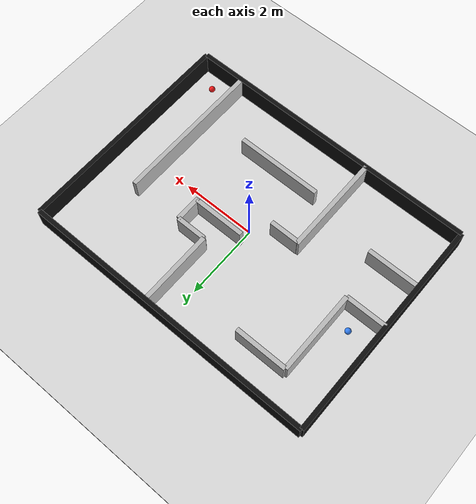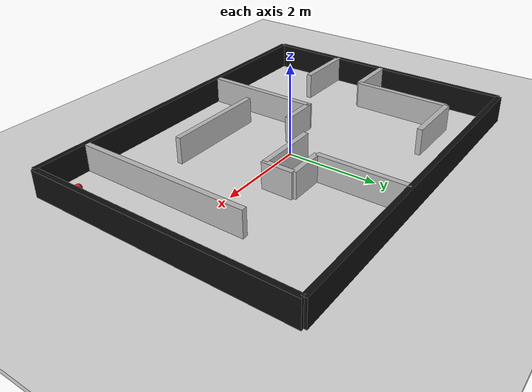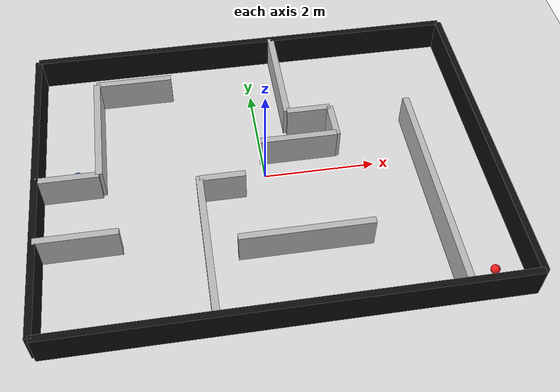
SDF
<?xml version="1.0" ?>
<sdf version="1.9">
  <world name="maze_world">
    <gravity>0 0 -9.8</gravity>

    <model name="ground_plane_local">
      <static>true</static>
      <pose>0 0 0 0 0 0</pose>
      <link name="link">
        <collision name="collision">
          <geometry><box><size>30 30 0.1</size></box></geometry>
          <pose>0 0 -0.05 0 0 0</pose>
        </collision>
        <visual name="visual">
          <geometry><box><size>30 30 0.1</size></box></geometry>
          <pose>0 0 -0.05 0 0 0</pose>
          <material>
            <ambient>0.85 0.85 0.85 1</ambient>
            <diffuse>0.85 0.85 0.85 1</diffuse>
          </material>
        </visual>
      </link>
    </model>

    <light type="directional" name="sun_light">
      <cast_shadows>false</cast_shadows>
      <pose>0 0 10 0 0 0</pose>
      <diffuse>0.95 0.95 0.95 1</diffuse>
      <specular>0.15 0.15 0.15 1</specular>
      <attenuation>
        <range>1000</range>
        <constant>0.9</constant>
        <linear>0.01</linear>
        <quadratic>0.001</quadratic>
      </attenuation>
      <direction>-0.5 0.1 -0.9</direction>
    </light>

    <scene>
      <ambient>0.8 0.8 0.8 1</ambient>
      <background>0.95 0.95 0.95 1</background>
      <shadows>false</shadows>
    </scene>

    <physics name="1ms" type="ignored">
      <max_step_size>0.001</max_step_size>
      <real_time_factor>1.0</real_time_factor>
    </physics>

    <!-- Outer walls -->
    <model name="wall_north">
      <static>true</static>
      <pose>0 3.0 0.3 0 0 0</pose>
      <link name="link">
        <collision name="collision">
          <geometry><box><size>8.0 0.12 0.6</size></box></geometry>
        </collision>
        <visual name="visual">
          <geometry><box><size>8.0 0.12 0.6</size></box></geometry>
          <material><ambient>0.05 0.05 0.05 1</ambient><diffuse>0.05 0.05 0.05 1</diffuse></material>
        </visual>
      </link>
    </model>

    <model name="wall_south">
      <static>true</static>
      <pose>0 -3.0 0.3 0 0 0</pose>
      <link name="link">
        <collision name="collision">
          <geometry><box><size>8.0 0.12 0.6</size></box></geometry>
        </collision>
        <visual name="visual">
          <geometry><box><size>8.0 0.12 0.6</size></box></geometry>
          <material><ambient>0.05 0.05 0.05 1</ambient><diffuse>0.05 0.05 0.05 1</diffuse></material>
        </visual>
      </link>
    </model>

    <model name="wall_west">
      <static>true</static>
      <pose>-4.0 0.0 0.3 0 0 0</pose>
      <link name="link">
        <collision name="collision">
          <geometry><box><size>0.12 6.0 0.6</size></box></geometry>
        </collision>
        <visual name="visual">
          <geometry><box><size>0.12 6.0 0.6</size></box></geometry>
          <material><ambient>0.05 0.05 0.05 1</ambient><diffuse>0.05 0.05 0.05 1</diffuse></material>
        </visual>
      </link>
    </model>

    <model name="wall_east">
      <static>true</static>
      <pose>4.0 0.0 0.3 0 0 0</pose>
      <link name="link">
        <collision name="collision">
          <geometry><box><size>0.12 6.0 0.6</size></box></geometry>
        </collision>
        <visual name="visual">
          <geometry><box><size>0.12 6.0 0.6</size></box></geometry>
          <material><ambient>0.05 0.05 0.05 1</ambient><diffuse>0.05 0.05 0.05 1</diffuse></material>
        </visual>
      </link>
    </model>

    <!-- Maze inner walls (re-drawn to match provided PNG) -->
    <model name="wall_i1_left_mid_h">
      <static>true</static>
      <pose>-3.45 0.0 0.3 0 0 0</pose>
      <link name="link">
        <collision name="collision"><geometry><box><size>1.1 0.12 0.6</size></box></geometry></collision>
        <visual name="visual"><geometry><box><size>1.1 0.12 0.6</size></box></geometry></visual>
      </link>
    </model>

    <model name="wall_i2_left_top_v">
      <static>true</static>
      <pose>-2.9 1.1 0.3 0 0 0</pose>
      <link name="link">
        <collision name="collision"><geometry><box><size>0.12 2.2 0.6</size></box></geometry></collision>
        <visual name="visual"><geometry><box><size>0.12 2.2 0.6</size></box></geometry></visual>
      </link>
    </model>

    <model name="wall_i3_left_top_h">
      <static>true</static>
      <pose>-2.2 2.2 0.3 0 0 0</pose>
      <link name="link">
        <collision name="collision"><geometry><box><size>1.4 0.12 0.6</size></box></geometry></collision>
        <visual name="visual"><geometry><box><size>1.4 0.12 0.6</size></box></geometry></visual>
      </link>
    </model>

    <model name="wall_i4_left_low_h">
      <static>true</static>
      <pose>-3.3 -1.25 0.3 0 0 0</pose>
      <link name="link">
        <collision name="collision"><geometry><box><size>1.4 0.12 0.6</size></box></geometry></collision>
        <visual name="visual"><geometry><box><size>1.4 0.12 0.6</size></box></geometry></visual>
      </link>
    </model>

    <model name="wall_i5_center_bottom_v">
      <static>true</static>
      <pose>-1.2 -1.65 0.3 0 0 0</pose>
      <link name="link">
        <collision name="collision"><geometry><box><size>0.12 2.7 0.6</size></box></geometry></collision>
        <visual name="visual"><geometry><box><size>0.12 2.7 0.6</size></box></geometry></visual>
      </link>
    </model>

    <model name="wall_i6_center_short_h">
      <static>true</static>
      <pose>-0.8 -0.35 0.3 0 0 0</pose>
      <link name="link">
        <collision name="collision"><geometry><box><size>0.8 0.12 0.6</size></box></geometry></collision>
        <visual name="visual"><geometry><box><size>0.8 0.12 0.6</size></box></geometry></visual>
      </link>
    </model>

    <model name="wall_i7_top_center_v">
      <static>true</static>
      <pose>0.55 2.0 0.3 0 0 0</pose>
      <link name="link">
        <collision name="collision"><geometry><box><size>0.12 2.0 0.6</size></box></geometry></collision>
        <visual name="visual"><geometry><box><size>0.12 2.0 0.6</size></box></geometry></visual>
      </link>
    </model>

    <model name="wall_i8_top_center_h">
      <static>true</static>
      <pose>0.95 1.0 0.3 0 0 0</pose>
      <link name="link">
        <collision name="collision"><geometry><box><size>0.8 0.12 0.6</size></box></geometry></collision>
        <visual name="visual"><geometry><box><size>0.8 0.12 0.6</size></box></geometry></visual>
      </link>
    </model>

    <model name="wall_i9_top_right_short_v">
      <static>true</static>
      <pose>1.35 0.65 0.3 0 0 0</pose>
      <link name="link">
        <collision name="collision"><geometry><box><size>0.12 0.7 0.6</size></box></geometry></collision>
        <visual name="visual"><geometry><box><size>0.12 0.7 0.6</size></box></geometry></visual>
      </link>
    </model>

    <model name="wall_i10_top_center_slant_like">
      <static>true</static>
      <pose>0.65 0.35 0.3 0 0 0</pose>
      <link name="link">
        <collision name="collision"><geometry><box><size>1.4 0.12 0.6</size></box></geometry></collision>
        <visual name="visual"><geometry><box><size>1.4 0.12 0.6</size></box></geometry></visual>
      </link>
    </model>

    <model name="wall_i11_right_center_v">
      <static>true</static>
      <pose>2.8 -1.0 0.3 0 0 0</pose>
      <link name="link">
        <collision name="collision"><geometry><box><size>0.12 4.0 0.6</size></box></geometry></collision>
        <visual name="visual"><geometry><box><size>0.12 4.0 0.6</size></box></geometry></visual>
      </link>
    </model>

    <model name="wall_i12_right_low_h">
      <static>true</static>
      <pose>0.45 -1.65 0.3 0 0 0</pose>
      <link name="link">
        <collision name="collision"><geometry><box><size>2.3 0.12 0.6</size></box></geometry></collision>
        <visual name="visual"><geometry><box><size>2.3 0.12 0.6</size></box></geometry></visual>
      </link>
    </model>

    <!-- Markers: blue=start, red=goal -->
    <model name="start_marker">
      <static>true</static>
      <pose>-3.35 0.45 0.05 0 0 0</pose>
      <link name="link">
        <visual name="visual">
          <geometry><sphere><radius>0.08</radius></sphere></geometry>
          <material><ambient>0.2 0.5 0.95 1</ambient><diffuse>0.2 0.5 0.95 1</diffuse></material>
        </visual>
      </link>
    </model>

    <model name="goal_marker">
      <static>true</static>
      <pose>3.45 -2.55 0.05 0 0 0</pose>
      <link name="link">
        <visual name="visual">
          <geometry><sphere><radius>0.08</radius></sphere></geometry>
          <material><ambient>0.95 0.1 0.1 1</ambient><diffuse>0.95 0.1 0.1 1</diffuse></material>
        </visual>
      </link>
    </model>

  </world>
</sdf>
